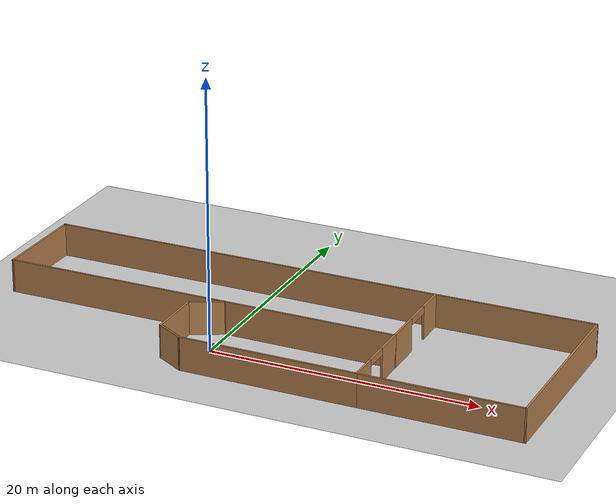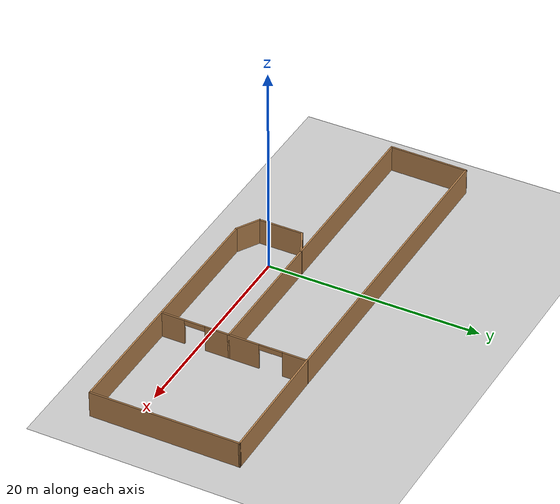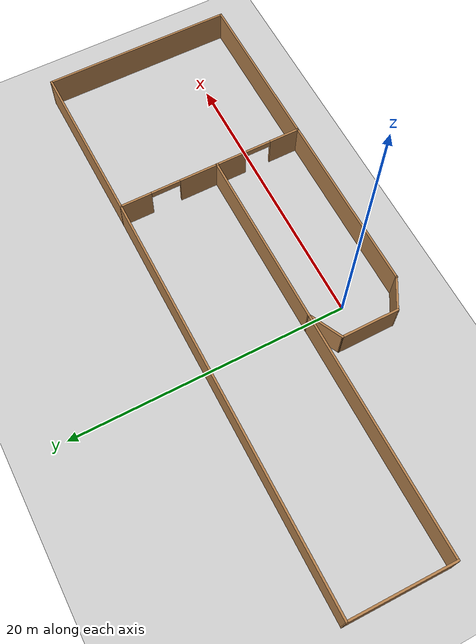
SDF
<sdf version="1.7">
 <world name="default">
  <light name="sun" type="directional">
   <pose>0 0 10 0 -0 0</pose>
   <diffuse>0.8 0.8 0.8 1</diffuse>
   <specular>0.2 0.2 0.2 1</specular>
   <attenuation>
    <range>1000</range>
    <constant>0.9</constant>
    <linear>0.01</linear>
    <quadratic>0.001</quadratic>
   </attenuation>
   <direction>-0.5 0.1 -0.9</direction>
   <spot><inner_angle>0</inner_angle><outer_angle>0</outer_angle><falloff>0</falloff></spot>
  </light>
  <model name="ground_plane">
   <static>1</static>
   <link name="link">
    <collision name="collision">
     <geometry><plane><normal>0 0 1</normal><size>100 100</size></plane></geometry>
     <surface>
      <contact><collide_bitmask>65535</collide_bitmask></contact>
      <friction><ode><mu>100</mu><mu2>50</mu2></ode></friction>
     </surface>
    </collision>
    <visual name="visual">
     <cast_shadows>0</cast_shadows>
     <geometry><plane><normal>0 0 1</normal><size>100 100</size></plane></geometry>
     <material>
      <script><uri>file://media/materials/scripts/gazebo.material</uri><name>Gazebo/Grey</name></script>
     </material>
    </visual>
   </link>
  </model>
  <gravity>0 0 -9.8</gravity>
  <magnetic_field>6e-06 2.3e-05 -4.2e-05</magnetic_field>
  <atmosphere type="adiabatic"/>
  <physics type="ode">
   <max_step_size>0.001</max_step_size>
   <real_time_factor>1</real_time_factor>
   <real_time_update_rate>1000</real_time_update_rate>
  </physics>
  <scene><ambient>0.4 0.4 0.4 1</ambient><background>0.7 0.7 0.7 1</background><shadows>1</shadows></scene>
  <audio><device>default</device></audio>
  <spherical_coordinates>
   <surface_model>EARTH_WGS84</surface_model>
   <latitude_deg>0</latitude_deg>
   <longitude_deg>0</longitude_deg>
   <elevation>0</elevation>
   <heading_deg>0</heading_deg>
  </spherical_coordinates>
  <model name="test_building_2">
   <pose>3.51789 3.44814 0 0 -0 0</pose>
   <link name="Wall_16">
    <collision name="Wall_16_Collision">
     <geometry><box><size>4.25 0.15 2.5</size></box></geometry>
     <pose>0 0 1.25 0 -0 0</pose>
    </collision>
    <visual name="Wall_16_Visual">
     <pose>0 0 1.25 0 -0 0</pose>
     <geometry><box><size>4.25 0.15 2.5</size></box></geometry>
     <material>
      <script><uri>file://media/materials/scripts/gazebo.material</uri><name>Gazebo/Wood</name></script>
      <ambient>1 1 1 1</ambient>
     </material>
     <meta><layer>0</layer></meta>
    </visual>
    <pose>-6.08502 -3.68664 0 0 -0 -1.5708</pose>
   </link>
   <link name="Wall_17">
    <collision name="Wall_17_Collision">
     <geometry><box><size>2.5 0.15 2.5</size></box></geometry>
     <pose>0 0 1.25 0 -0 0</pose>
    </collision>
    <visual name="Wall_17_Visual">
     <pose>0 0 1.25 0 -0 0</pose>
     <geometry><box><size>2.5 0.15 2.5</size></box></geometry>
     <material>
      <script><uri>file://media/materials/scripts/gazebo.material</uri><name>Gazebo/Wood</name></script>
      <ambient>1 1 1 1</ambient>
     </material>
     <meta><layer>0</layer></meta>
    </visual>
    <pose>-5.06743 -6.32414 0 0 -0 -0.523599</pose>
   </link>
   <link name="Wall_18">
    <collision name="Wall_18_Collision">
     <geometry><box><size>13.25 0.15 2.5</size></box></geometry>
     <pose>0 0 1.25 0 -0 0</pose>
    </collision>
    <visual name="Wall_18_Visual">
     <pose>0 0 1.25 0 -0 0</pose>
     <geometry><box><size>13.25 0.15 2.5</size></box></geometry>
     <material>
      <script><uri>file://media/materials/scripts/gazebo.material</uri><name>Gazebo/Wood</name></script>
      <ambient>1 1 1 1</ambient>
     </material>
     <meta><layer>0</layer></meta>
    </visual>
    <pose>2.50014 -6.91164 0 0 -0 0</pose>
   </link>
   <link name="Wall_19">
    <pose>9.05015 -3.70166 0 0 -0 1.5708</pose>
    <visual name="Wall_19_Visual_0">
     <pose>-2.12882 0 1.25 0 -0 0</pose>
     <geometry><box><size>2.31231 0.15 2.5</size></box></geometry>
     <material>
      <script><uri>file://media/materials/scripts/gazebo.material</uri><name>Gazebo/Wood</name></script>
      <ambient>1 1 1 1</ambient>
     </material>
     <meta><layer>0</layer></meta>
    </visual>
    <collision name="Wall_19_Collision_0">
     <geometry><box><size>2.31231 0.15 2.5</size></box></geometry>
     <pose>-2.12882 0 1.25 0 -0 0</pose>
    </collision>
    <visual name="Wall_19_Visual_1">
     <pose>2.12062 0 1.25 0 -0 0</pose>
     <geometry><box><size>2.32871 0.15 2.5</size></box></geometry>
     <material>
      <script><uri>file://media/materials/scripts/gazebo.material</uri><name>Gazebo/Wood</name></script>
      <ambient>1 1 1 1</ambient>
     </material>
     <meta><layer>0</layer></meta>
    </visual>
    <collision name="Wall_19_Collision_1">
     <geometry><box><size>2.32871 0.15 2.5</size></box></geometry>
     <pose>2.12062 0 1.25 0 -0 0</pose>
    </collision>
    <visual name="Wall_19_Visual_2">
     <pose>-0.0082 0 2.25 0 -0 0</pose>
     <geometry><box><size>1.92894 0.15 0.5</size></box></geometry>
     <material>
      <script><uri>file://media/materials/scripts/gazebo.material</uri><name>Gazebo/Wood</name></script>
      <ambient>1 1 1 1</ambient>
     </material>
     <meta><layer>0</layer></meta>
    </visual>
    <collision name="Wall_19_Collision_2">
     <geometry><box><size>1.92894 0.15 0.5</size></box></geometry>
     <pose>-0.0082 0 2.25 0 -0 0</pose>
    </collision>
   </link>
   <link name="Wall_20">
    <collision name="Wall_20_Collision">
     <geometry><box><size>13 0.15 2.5</size></box></geometry>
     <pose>0 0 1.25 0 -0 0</pose>
    </collision>
    <visual name="Wall_20_Visual">
     <pose>0 0 1.25 0 -0 0</pose>
     <geometry><box><size>13 0.15 2.5</size></box></geometry>
     <material>
      <script><uri>file://media/materials/scripts/gazebo.material</uri><name>Gazebo/Wood</name></script>
      <ambient>1 1 1 1</ambient>
     </material>
     <meta><layer>0</layer></meta>
    </visual>
    <pose>2.62514 -0.491676 0 0 -0 3.14159</pose>
   </link>
   <link name="Wall_21">
    <collision name="Wall_21_Collision">
     <geometry><box><size>2.70595 0.15 2.5</size></box></geometry>
     <pose>0 0 1.25 0 -0 0</pose>
    </collision>
    <visual name="Wall_21_Visual">
     <pose>0 0 1.25 0 -0 0</pose>
     <geometry><box><size>2.70595 0.15 2.5</size></box></geometry>
     <material>
      <script><uri>file://media/materials/scripts/gazebo.material</uri><name>Gazebo/Wood</name></script>
      <ambient>1 1 1 1</ambient>
     </material>
     <meta><layer>0</layer></meta>
    </visual>
    <pose>-4.94243 -1.06416 0 0 -0 -2.67711</pose>
   </link>
   <link name="Wall_23">
    <collision name="Wall_23_Collision">
     <geometry><box><size>12 0.15 2.5</size></box></geometry>
     <pose>0 0 1.25 0 -0 0</pose>
    </collision>
    <visual name="Wall_23_Visual">
     <pose>0 0 1.25 0 -0 0</pose>
     <geometry><box><size>12 0.15 2.5</size></box></geometry>
     <material>
      <script><uri>file://media/materials/scripts/gazebo.material</uri><name>Gazebo/Wood</name></script>
      <ambient>1 1 1 1</ambient>
     </material>
     <meta><layer>0</layer></meta>
    </visual>
    <pose>14.9751 -6.91164 0 0 -0 0</pose>
   </link>
   <link name="Wall_24">
    <collision name="Wall_24_Collision">
     <geometry><box><size>14 0.15 2.5</size></box></geometry>
     <pose>0 0 1.25 0 -0 0</pose>
    </collision>
    <visual name="Wall_24_Visual">
     <pose>0 0 1.25 0 -0 0</pose>
     <geometry><box><size>14 0.15 2.5</size></box></geometry>
     <material>
      <script><uri>file://media/materials/scripts/gazebo.material</uri><name>Gazebo/Wood</name></script>
      <ambient>1 1 1 1</ambient>
     </material>
     <meta><layer>0</layer></meta>
    </visual>
    <pose>20.9001 0.013364 0 0 -0 1.5708</pose>
   </link>
   <link name="Wall_25">
    <collision name="Wall_25_Collision">
     <geometry><box><size>12.0006 0.15 2.5</size></box></geometry>
     <pose>0 0 1.25 0 -0 0</pose>
    </collision>
    <visual name="Wall_25_Visual">
     <pose>0 0 1.25 0 -0 0</pose>
     <geometry><box><size>12.0006 0.15 2.5</size></box></geometry>
     <material>
      <script><uri>file://media/materials/scripts/gazebo.material</uri><name>Gazebo/Wood</name></script>
      <ambient>1 1 1 1</ambient>
     </material>
     <meta><layer>0</layer></meta>
    </visual>
    <pose>14.9751 6.88085 0 0 -0 -3.13189</pose>
   </link>
   <link name="Wall_26">
    <pose>9.05015 3.14834 0 0 -0 -1.5708</pose>
    <visual name="Wall_26_Visual_0">
     <pose>-2.56985 0 1.25 0 -0 0</pose>
     <geometry><box><size>2.36031 0.15 2.5</size></box></geometry>
     <material>
      <script><uri>file://media/materials/scripts/gazebo.material</uri><name>Gazebo/Wood</name></script>
      <ambient>1 1 1 1</ambient>
     </material>
     <meta><layer>0</layer></meta>
    </visual>
    <collision name="Wall_26_Collision_0">
     <geometry><box><size>2.36031 0.15 2.5</size></box></geometry>
     <pose>-2.56985 0 1.25 0 -0 0</pose>
    </collision>
    <visual name="Wall_26_Visual_1">
     <pose>2.26654 0 1.25 0 -0 0</pose>
     <geometry><box><size>2.96692 0.15 2.5</size></box></geometry>
     <material>
      <script><uri>file://media/materials/scripts/gazebo.material</uri><name>Gazebo/Wood</name></script>
      <ambient>1 1 1 1</ambient>
     </material>
     <meta><layer>0</layer></meta>
    </visual>
    <collision name="Wall_26_Collision_1">
     <geometry><box><size>2.96692 0.15 2.5</size></box></geometry>
     <pose>2.26654 0 1.25 0 -0 0</pose>
    </collision>
    <visual name="Wall_26_Visual_2">
     <pose>-0.303308 0 2.25 0 -0 0</pose>
     <geometry><box><size>2.17277 0.15 0.5</size></box></geometry>
     <material>
      <script><uri>file://media/materials/scripts/gazebo.material</uri><name>Gazebo/Wood</name></script>
      <ambient>1 1 1 1</ambient>
     </material>
     <meta><layer>0</layer></meta>
    </visual>
    <collision name="Wall_26_Collision_2">
     <geometry><box><size>2.17277 0.15 0.5</size></box></geometry>
     <pose>-0.303308 0 2.25 0 -0 0</pose>
    </collision>
   </link>
   <link name="Wall_28">
    <collision name="Wall_28_Collision">
     <geometry><box><size>30 0.15 2.5</size></box></geometry>
     <pose>0 0 1.25 0 -0 0</pose>
    </collision>
    <visual name="Wall_28_Visual">
     <pose>0 0 1.25 0 -0 0</pose>
     <geometry><box><size>30 0.15 2.5</size></box></geometry>
     <material>
      <script><uri>file://media/materials/scripts/gazebo.material</uri><name>Gazebo/Wood</name></script>
      <ambient>1 1 1 1</ambient>
     </material>
     <meta><layer>0</layer></meta>
    </visual>
    <pose>-5.87485 6.82334 0 0 -0 3.14159</pose>
   </link>
   <link name="Wall_29">
    <collision name="Wall_29_Collision">
     <geometry><box><size>7.4657 0.15 2.5</size></box></geometry>
     <pose>0 0 1.25 0 -0 0</pose>
    </collision>
    <visual name="Wall_29_Visual">
     <pose>0 0 1.25 0 -0 0</pose>
     <geometry><box><size>7.4657 0.15 2.5</size></box></geometry>
     <material>
      <script><uri>file://media/materials/scripts/gazebo.material</uri><name>Gazebo/Wood</name></script>
      <ambient>1 1 1 1</ambient>
     </material>
     <meta><layer>0</layer></meta>
    </visual>
    <pose>-20.8499 3.16583 0 0 -0 -1.58447</pose>
   </link>
   <link name="Wall_31">
    <collision name="Wall_31_Collision">
     <geometry><box><size>17.25 0.15 2.5</size></box></geometry>
     <pose>0 0 1.25 0 -0 0</pose>
    </collision>
    <visual name="Wall_31_Visual">
     <pose>0 0 1.25 0 -0 0</pose>
     <geometry><box><size>17.25 0.15 2.5</size></box></geometry>
     <material>
      <script><uri>file://media/materials/scripts/gazebo.material</uri><name>Gazebo/Wood</name></script>
      <ambient>1 1 1 1</ambient>
     </material>
     <meta><layer>0</layer></meta>
    </visual>
    <pose>-12.3499 -0.491676 0 0 -0 3.14159</pose>
   </link>
   <static>1</static>
  </model>
 </world>
</sdf>
